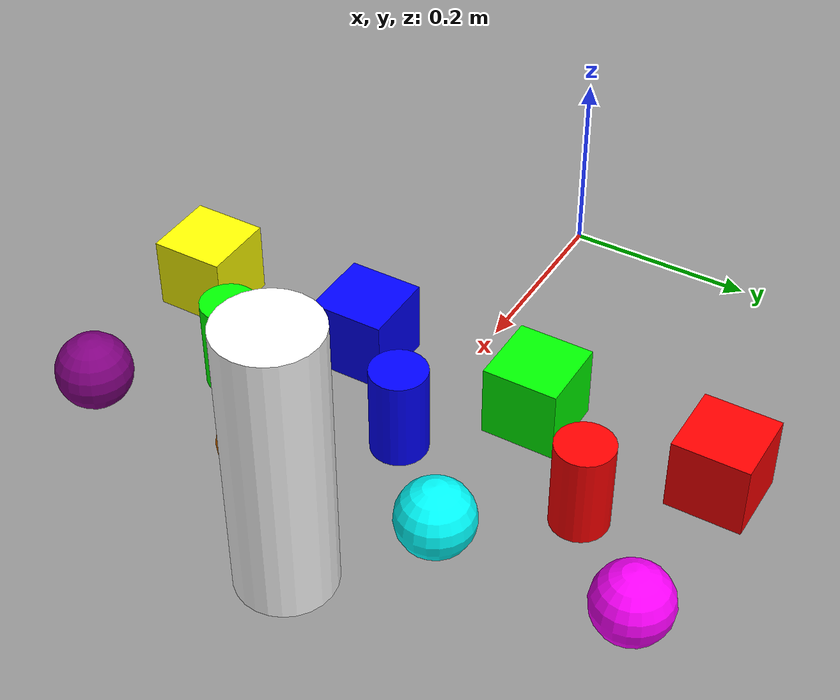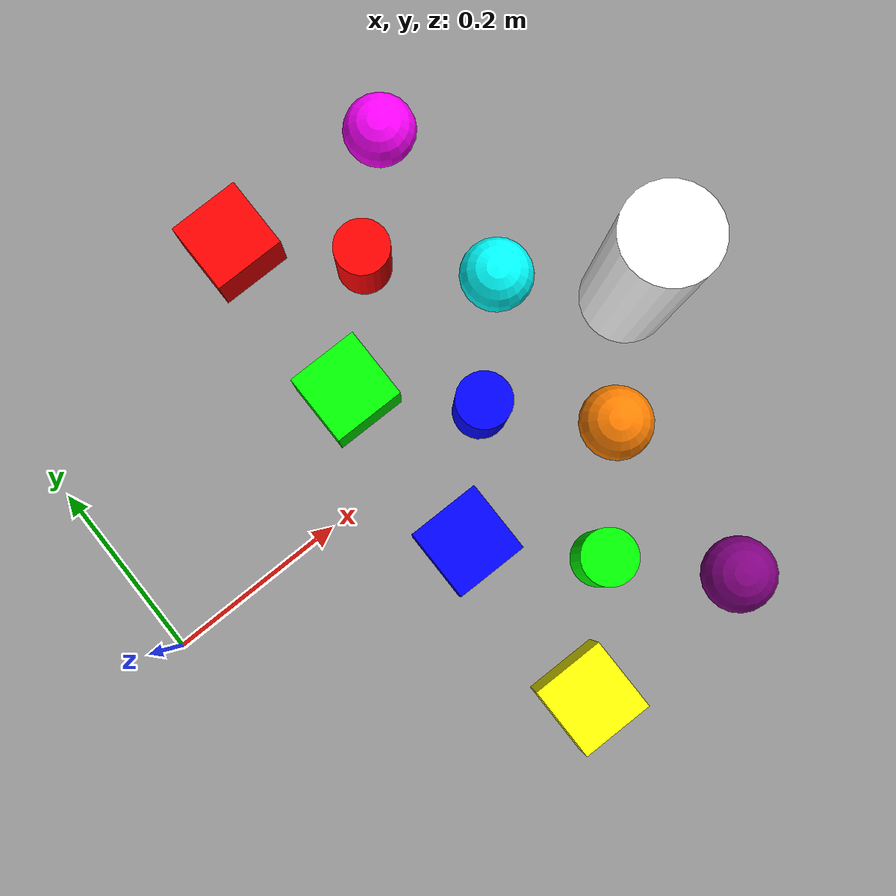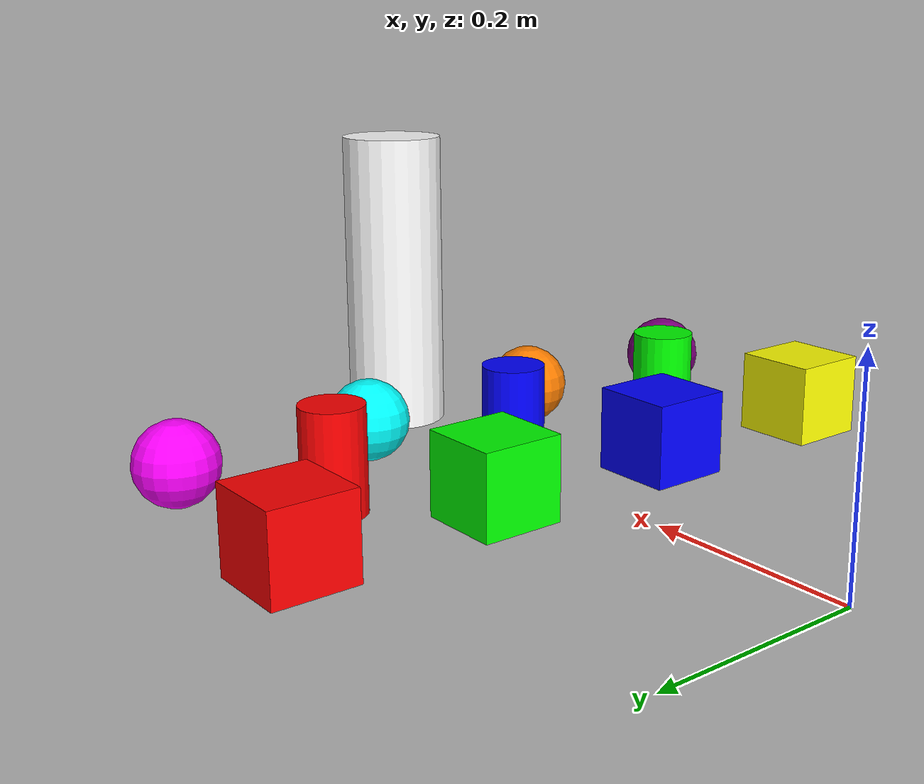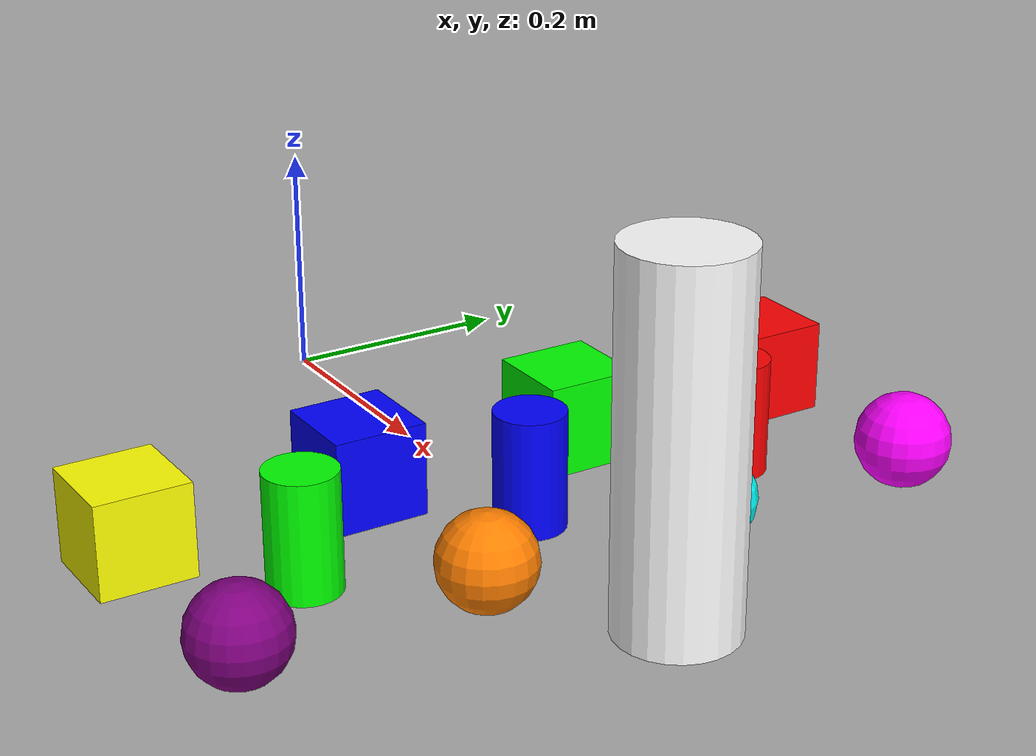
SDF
<?xml version="1.0" ?>
<sdf version="1.6">
  <world name="colorful_objects_world">

    <!-- Red Box -->
    <model name="red_box">
      <pose>0.3 0.3 0.04 0 0 0</pose>
      <static>false</static>
      <link name="link">
        <inertial>
          <mass>1.0</mass>
          <inertia>
            <ixx>0.0167</ixx>
            <ixy>0.0</ixy>
            <ixz>0.0</ixz>
            <iyy>0.0167</iyy>
            <iyz>0.0</iyz>
            <izz>0.0167</izz>
          </inertia>
        </inertial>
        <collision name="collision">
          <geometry>
            <box>
              <size>0.08 0.08 0.08</size>
            </box>
          </geometry>
        </collision>
        <visual name="visual">
          <geometry>
            <box>
              <size>0.08 0.08 0.08</size>
            </box>
          </geometry>
          <material>
            <ambient>1.0 0.0 0.0 1.0</ambient>
            <diffuse>1.0 0.0 0.0 1.0</diffuse>
            <specular>0.1 0.1 0.1 1.0</specular>
          </material>
        </visual>
      </link>
    </model>

    <!-- Green Box -->
    <model name="green_box">
      <pose>0.3 0.1 0.04 0 0 0</pose>
      <static>false</static>
      <link name="link">
        <inertial>
          <mass>1.0</mass>
          <inertia>
            <ixx>0.0167</ixx>
            <ixy>0.0</ixy>
            <ixz>0.0</ixz>
            <iyy>0.0167</iyy>
            <iyz>0.0</iyz>
            <izz>0.0167</izz>
          </inertia>
        </inertial>
        <collision name="collision">
          <geometry>
            <box>
              <size>0.08 0.08 0.08</size>
            </box>
          </geometry>
        </collision>
        <visual name="visual">
          <geometry>
            <box>
              <size>0.08 0.08 0.08</size>
            </box>
          </geometry>
          <material>
            <ambient>0.0 1.0 0.0 1.0</ambient>
            <diffuse>0.0 1.0 0.0 1.0</diffuse>
            <specular>0.1 0.1 0.1 1.0</specular>
          </material>
        </visual>
      </link>
    </model>

    <!-- Blue Box -->
    <model name="blue_box">
      <pose>0.3 -0.1 0.04 0 0 0</pose>
      <static>false</static>
      <link name="link">
        <inertial>
          <mass>1.0</mass>
          <inertia>
            <ixx>0.0167</ixx>
            <ixy>0.0</ixy>
            <ixz>0.0</ixz>
            <iyy>0.0167</iyy>
            <iyz>0.0</iyz>
            <izz>0.0167</izz>
          </inertia>
        </inertial>
        <collision name="collision">
          <geometry>
            <box>
              <size>0.08 0.08 0.08</size>
            </box>
          </geometry>
        </collision>
        <visual name="visual">
          <geometry>
            <box>
              <size>0.08 0.08 0.08</size>
            </box>
          </geometry>
          <material>
            <ambient>0.0 0.0 1.0 1.0</ambient>
            <diffuse>0.0 0.0 1.0 1.0</diffuse>
            <specular>0.1 0.1 0.1 1.0</specular>
          </material>
        </visual>
      </link>
    </model>

    <!-- Yellow Box -->
    <model name="yellow_box">
      <pose>0.3 -0.3 0.04 0 0 0</pose>
      <static>false</static>
      <link name="link">
        <inertial>
          <mass>1.0</mass>
          <inertia>
            <ixx>0.0167</ixx>
            <ixy>0.0</ixy>
            <ixz>0.0</ixz>
            <iyy>0.0167</iyy>
            <iyz>0.0</iyz>
            <izz>0.0167</izz>
          </inertia>
        </inertial>
        <collision name="collision">
          <geometry>
            <box>
              <size>0.08 0.08 0.08</size>
            </box>
          </geometry>
        </collision>
        <visual name="visual">
          <geometry>
            <box>
              <size>0.08 0.08 0.08</size>
            </box>
          </geometry>
          <material>
            <ambient>1.0 1.0 0.0 1.0</ambient>
            <diffuse>1.0 1.0 0.0 1.0</diffuse>
            <specular>0.1 0.1 0.1 1.0</specular>
          </material>
        </visual>
      </link>
    </model>

    <!-- Magenta Sphere -->
    <model name="magenta_sphere">
      <pose>0.5 0.3 0.04 0 0 0</pose>
      <static>false</static>
      <link name="link">
        <inertial>
          <mass>1.0</mass>
          <inertia>
            <ixx>0.01</ixx>
            <ixy>0.0</ixy>
            <ixz>0.0</ixz>
            <iyy>0.01</iyy>
            <iyz>0.0</iyz>
            <izz>0.01</izz>
          </inertia>
        </inertial>
        <collision name="collision">
          <geometry>
            <sphere>
              <radius>0.04</radius>
            </sphere>
          </geometry>
        </collision>
        <visual name="visual">
          <geometry>
            <sphere>
              <radius>0.04</radius>
            </sphere>
          </geometry>
          <material>
            <ambient>1.0 0.0 1.0 1.0</ambient>
            <diffuse>1.0 0.0 1.0 1.0</diffuse>
            <specular>0.1 0.1 0.1 1.0</specular>
          </material>
        </visual>
      </link>
    </model>

    <!-- Cyan Sphere -->
    <model name="cyan_sphere">
      <pose>0.5 0.1 0.04 0 0 0</pose>
      <static>false</static>
      <link name="link">
        <inertial>
          <mass>1.0</mass>
          <inertia>
            <ixx>0.01</ixx>
            <ixy>0.0</ixy>
            <ixz>0.0</ixz>
            <iyy>0.01</iyy>
            <iyz>0.0</iyz>
            <izz>0.01</izz>
          </inertia>
        </inertial>
        <collision name="collision">
          <geometry>
            <sphere>
              <radius>0.04</radius>
            </sphere>
          </geometry>
        </collision>
        <visual name="visual">
          <geometry>
            <sphere>
              <radius>0.04</radius>
            </sphere>
          </geometry>
          <material>
            <ambient>0.0 1.0 1.0 1.0</ambient>
            <diffuse>0.0 1.0 1.0 1.0</diffuse>
            <specular>0.1 0.1 0.1 1.0</specular>
          </material>
        </visual>
      </link>
    </model>

    <!-- Orange Sphere -->
    <model name="orange_sphere">
      <pose>0.5 -0.1 0.04 0 0 0</pose>
      <static>false</static>
      <link name="link">
        <inertial>
          <mass>1.0</mass>
          <inertia>
            <ixx>0.01</ixx>
            <ixy>0.0</ixy>
            <ixz>0.0</ixz>
            <iyy>0.01</iyy>
            <iyz>0.0</iyz>
            <izz>0.01</izz>
          </inertia>
        </inertial>
        <collision name="collision">
          <geometry>
            <sphere>
              <radius>0.04</radius>
            </sphere>
          </geometry>
        </collision>
        <visual name="visual">
          <geometry>
            <sphere>
              <radius>0.04</radius>
            </sphere>
          </geometry>
          <material>
            <ambient>1.0 0.5 0.0 1.0</ambient>
            <diffuse>1.0 0.5 0.0 1.0</diffuse>
            <specular>0.1 0.1 0.1 1.0</specular>
          </material>
        </visual>
      </link>
    </model>

    <!-- Purple Sphere -->
    <model name="purple_sphere">
      <pose>0.5 -0.3 0.04 0 0 0</pose>
      <static>false</static>
      <link name="link">
        <inertial>
          <mass>1.0</mass>
          <inertia>
            <ixx>0.01</ixx>
            <ixy>0.0</ixy>
            <ixz>0.0</ixz>
            <iyy>0.01</iyy>
            <iyz>0.0</iyz>
            <izz>0.01</izz>
          </inertia>
        </inertial>
        <collision name="collision">
          <geometry>
            <sphere>
              <radius>0.04</radius>
            </sphere>
          </geometry>
        </collision>
        <visual name="visual">
          <geometry>
            <sphere>
              <radius>0.04</radius>
            </sphere>
          </geometry>
          <material>
            <ambient>0.5 0.0 0.5 1.0</ambient>
            <diffuse>0.5 0.0 0.5 1.0</diffuse>
            <specular>0.1 0.1 0.1 1.0</specular>
          </material>
        </visual>
      </link>
    </model>

    <!-- Red Cylinder -->
    <model name="red_cylinder">
      <pose>0.4 0.2 0.05 0 0 0</pose>
      <static>false</static>
      <link name="link">
        <inertial>
          <mass>1.0</mass>
          <inertia>
            <ixx>0.02</ixx>
            <ixy>0.0</ixy>
            <ixz>0.0</ixz>
            <iyy>0.02</iyy>
            <iyz>0.0</iyz>
            <izz>0.01</izz>
          </inertia>
        </inertial>
        <collision name="collision">
          <geometry>
            <cylinder>
              <radius>0.03</radius>
              <length>0.1</length>
            </cylinder>
          </geometry>
        </collision>
        <visual name="visual">
          <geometry>
            <cylinder>
              <radius>0.03</radius>
              <length>0.1</length>
            </cylinder>
          </geometry>
          <material>
            <ambient>1.0 0.0 0.0 1.0</ambient>
            <diffuse>1.0 0.0 0.0 1.0</diffuse>
            <specular>0.1 0.1 0.1 1.0</specular>
          </material>
        </visual>
      </link>
    </model>

    <!-- Blue Cylinder -->
    <model name="blue_cylinder">
      <pose>0.4 0.0 0.05 0 0 0</pose>
      <static>false</static>
      <link name="link">
        <inertial>
          <mass>1.0</mass>
          <inertia>
            <ixx>0.02</ixx>
            <ixy>0.0</ixy>
            <ixz>0.0</ixz>
            <iyy>0.02</iyy>
            <iyz>0.0</iyz>
            <izz>0.01</izz>
          </inertia>
        </inertial>
        <collision name="collision">
          <geometry>
            <cylinder>
              <radius>0.03</radius>
              <length>0.1</length>
            </cylinder>
          </geometry>
        </collision>
        <visual name="visual">
          <geometry>
            <cylinder>
              <radius>0.03</radius>
              <length>0.1</length>
            </cylinder>
          </geometry>
          <material>
            <ambient>0.0 0.0 1.0 1.0</ambient>
            <diffuse>0.0 0.0 1.0 1.0</diffuse>
            <specular>0.1 0.1 0.1 1.0</specular>
          </material>
        </visual>
      </link>
    </model>

    <!-- Green Cylinder -->
    <model name="green_cylinder">
      <pose>0.4 -0.2 0.05 0 0 0</pose>
      <static>false</static>
      <link name="link">
        <inertial>
          <mass>1.0</mass>
          <inertia>
            <ixx>0.02</ixx>
            <ixy>0.0</ixy>
            <ixz>0.0</ixz>
            <iyy>0.02</iyy>
            <iyz>0.0</iyz>
            <izz>0.01</izz>
          </inertia>
        </inertial>
        <collision name="collision">
          <geometry>
            <cylinder>
              <radius>0.03</radius>
              <length>0.1</length>
            </cylinder>
          </geometry>
        </collision>
        <visual name="visual">
          <geometry>
            <cylinder>
              <radius>0.03</radius>
              <length>0.1</length>
            </cylinder>
          </geometry>
          <material>
            <ambient>0.0 1.0 0.0 1.0</ambient>
            <diffuse>0.0 1.0 0.0 1.0</diffuse>
            <specular>0.1 0.1 0.1 1.0</specular>
          </material>
        </visual>
      </link>
    </model>

    <!-- White Tower (tall landmark) -->
    <model name="white_tower">
      <pose>0.6 0.0 0.15 0 0 0</pose>
      <static>false</static>
      <link name="link">
        <inertial>
          <mass>1.0</mass>
          <inertia>
            <ixx>0.03</ixx>
            <ixy>0.0</ixy>
            <ixz>0.0</ixz>
            <iyy>0.03</iyy>
            <iyz>0.0</iyz>
            <izz>0.01</izz>
          </inertia>
        </inertial>
        <collision name="collision">
          <geometry>
            <cylinder>
              <radius>0.05</radius>
              <length>0.3</length>
            </cylinder>
          </geometry>
        </collision>
        <visual name="visual">
          <geometry>
            <cylinder>
              <radius>0.05</radius>
              <length>0.3</length>
            </cylinder>
          </geometry>
          <material>
            <ambient>1.0 1.0 1.0 1.0</ambient>
            <diffuse>1.0 1.0 1.0 1.0</diffuse>
            <specular>0.1 0.1 0.1 1.0</specular>
          </material>
        </visual>
      </link>
    </model>

  </world>
</sdf>
